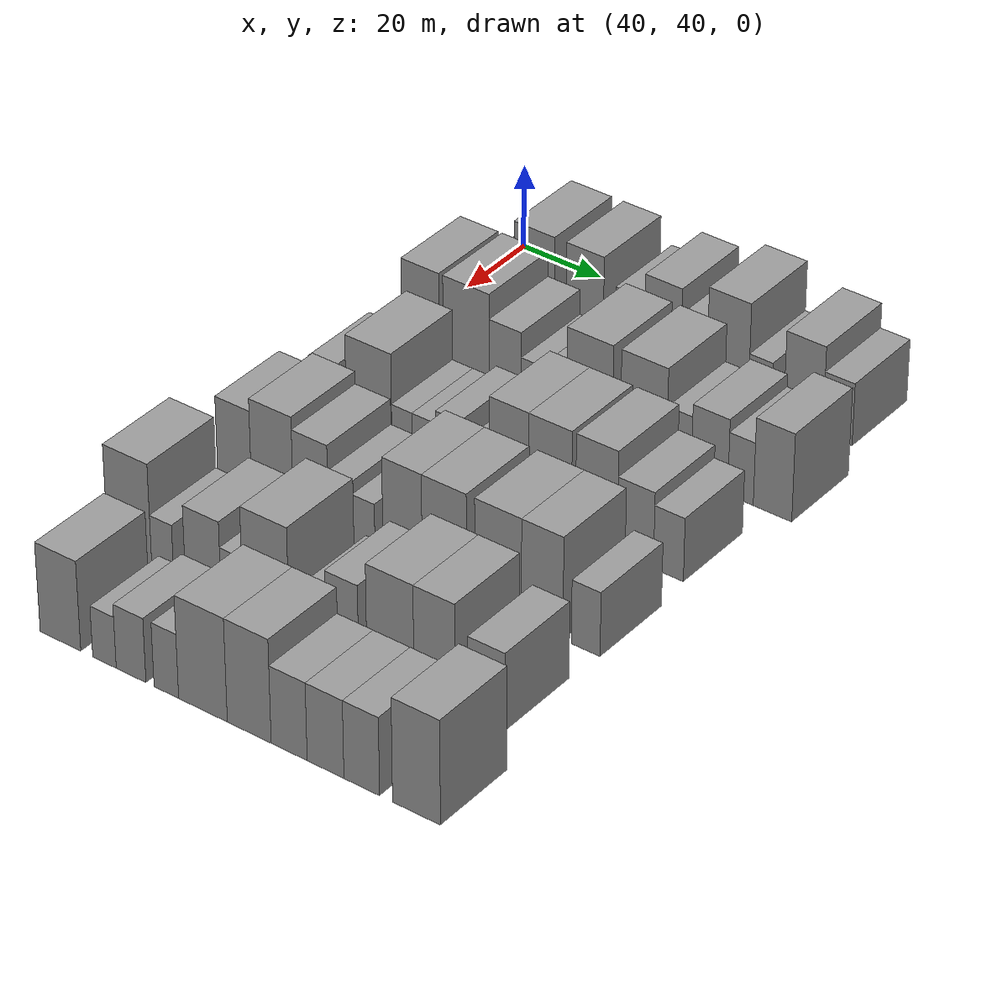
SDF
<sdf version="1.6">
 <world name="default">
  <model name="building_61">
   <static>1</static>
   <pose>50.0000 49.7104 0 0.000000 0.000000 0.000000</pose>
   <link name="link">
    <pose>0 0 6.00 0 0 0</pose>
    <collision name="collision"><geometry><box><size>20.0000 4.9431 12.0000</size></box></geometry></collision>
    <visual name="visual">
     <cast_shadows>0</cast_shadows>
     <geometry><box><size>20.0000 4.9431 12.0000</size></box></geometry>
     <material>
      <script>
       <uri>model://grey_wall/materials/scripts</uri>
       <uri>model://grey_wall/materials/textures</uri>
       <name>vrc/grey_wall</name>
      </script>
     </material>
    </visual>
   </link>
  </model>
  <model name="building_62">
   <static>1</static>
   <pose>50.0000 57.4288 0 0.000000 0.000000 0.000000</pose>
   <link name="link">
    <pose>0 0 10.50 0 0 0</pose>
    <collision name="collision"><geometry><box><size>20.0000 10.4938 21.0000</size></box></geometry></collision>
    <visual name="visual">
     <cast_shadows>0</cast_shadows>
     <geometry><box><size>20.0000 10.4938 21.0000</size></box></geometry>
     <material>
      <script>
       <uri>model://grey_wall/materials/scripts</uri>
       <uri>model://grey_wall/materials/textures</uri>
       <name>vrc/grey_wall</name>
      </script>
     </material>
    </visual>
   </link>
  </model>
  <model name="building_63">
   <static>1</static>
   <pose>50.0000 70.4778 0 0.000000 0.000000 0.000000</pose>
   <link name="link">
    <pose>0 0 10.50 0 0 0</pose>
    <collision name="collision"><geometry><box><size>20.0000 9.6041 21.0000</size></box></geometry></collision>
    <visual name="visual">
     <cast_shadows>0</cast_shadows>
     <geometry><box><size>20.0000 9.6041 21.0000</size></box></geometry>
     <material>
      <script>
       <uri>model://grey_wall/materials/scripts</uri>
       <uri>model://grey_wall/materials/textures</uri>
       <name>vrc/grey_wall</name>
      </script>
     </material>
    </visual>
   </link>
  </model>
  <model name="building_64">
   <static>1</static>
   <pose>50.0000 81.9742 0 0.000000 0.000000 0.000000</pose>
   <link name="link">
    <pose>0 0 7.50 0 0 0</pose>
    <collision name="collision"><geometry><box><size>20.0000 7.3887 15.0000</size></box></geometry></collision>
    <visual name="visual">
     <cast_shadows>0</cast_shadows>
     <geometry><box><size>20.0000 7.3887 15.0000</size></box></geometry>
     <material>
      <script>
       <uri>model://grey_wall/materials/scripts</uri>
       <uri>model://grey_wall/materials/textures</uri>
       <name>vrc/grey_wall</name>
      </script>
     </material>
    </visual>
   </link>
  </model>
  <model name="building_65">
   <static>1</static>
   <pose>50.0000 90.2944 0 0.000000 0.000000 0.000000</pose>
   <link name="link">
    <pose>0 0 10.50 0 0 0</pose>
    <collision name="collision"><geometry><box><size>20.0000 9.2517 21.0000</size></box></geometry></collision>
    <visual name="visual">
     <cast_shadows>0</cast_shadows>
     <geometry><box><size>20.0000 9.2517 21.0000</size></box></geometry>
     <material>
      <script>
       <uri>model://grey_wall/materials/scripts</uri>
       <uri>model://grey_wall/materials/textures</uri>
       <name>vrc/grey_wall</name>
      </script>
     </material>
    </visual>
   </link>
  </model>
  <model name="building_66">
   <static>1</static>
   <pose>50.0000 98.1744 0 0.000000 0.000000 0.000000</pose>
   <link name="link">
    <pose>0 0 7.50 0 0 0</pose>
    <collision name="collision"><geometry><box><size>20.0000 6.5083 15.0000</size></box></geometry></collision>
    <visual name="visual">
     <cast_shadows>0</cast_shadows>
     <geometry><box><size>20.0000 6.5083 15.0000</size></box></geometry>
     <material>
      <script>
       <uri>model://grey_wall/materials/scripts</uri>
       <uri>model://grey_wall/materials/textures</uri>
       <name>vrc/grey_wall</name>
      </script>
     </material>
    </visual>
   </link>
  </model>
  <model name="building_67">
   <static>1</static>
   <pose>50.0000 106.5988 0 0.000000 0.000000 0.000000</pose>
   <link name="link">
    <pose>0 0 12.00 0 0 0</pose>
    <collision name="collision"><geometry><box><size>20.0000 10.3404 24.0000</size></box></geometry></collision>
    <visual name="visual">
     <cast_shadows>0</cast_shadows>
     <geometry><box><size>20.0000 10.3404 24.0000</size></box></geometry>
     <material>
      <script>
       <uri>model://grey_wall/materials/scripts</uri>
       <uri>model://grey_wall/materials/textures</uri>
       <name>vrc/grey_wall</name>
      </script>
     </material>
    </visual>
   </link>
  </model>
  <model name="building_68">
   <static>1</static>
   <pose>50.0000 114.6178 0 0.000000 0.000000 0.000000</pose>
   <link name="link">
    <pose>0 0 6.00 0 0 0</pose>
    <collision name="collision"><geometry><box><size>20.0000 5.6977 12.0000</size></box></geometry></collision>
    <visual name="visual">
     <cast_shadows>0</cast_shadows>
     <geometry><box><size>20.0000 5.6977 12.0000</size></box></geometry>
     <material>
      <script>
       <uri>model://grey_wall/materials/scripts</uri>
       <uri>model://grey_wall/materials/textures</uri>
       <name>vrc/grey_wall</name>
      </script>
     </material>
    </visual>
   </link>
  </model>
  <model name="building_69">
   <static>1</static>
   <pose>50.0000 125.2408 0 0.000000 0.000000 0.000000</pose>
   <link name="link">
    <pose>0 0 10.50 0 0 0</pose>
    <collision name="collision"><geometry><box><size>20.0000 9.5483 21.0000</size></box></geometry></collision>
    <visual name="visual">
     <cast_shadows>0</cast_shadows>
     <geometry><box><size>20.0000 9.5483 21.0000</size></box></geometry>
     <material>
      <script>
       <uri>model://grey_wall/materials/scripts</uri>
       <uri>model://grey_wall/materials/textures</uri>
       <name>vrc/grey_wall</name>
      </script>
     </material>
    </visual>
   </link>
  </model>
  <model name="building_70">
   <static>1</static>
   <pose>50.0000 133.5757 0 0.000000 0.000000 0.000000</pose>
   <link name="link">
    <pose>0 0 7.50 0 0 0</pose>
    <collision name="collision"><geometry><box><size>20.0000 7.1214 15.0000</size></box></geometry></collision>
    <visual name="visual">
     <cast_shadows>0</cast_shadows>
     <geometry><box><size>20.0000 7.1214 15.0000</size></box></geometry>
     <material>
      <script>
       <uri>model://grey_wall/materials/scripts</uri>
       <uri>model://grey_wall/materials/textures</uri>
       <name>vrc/grey_wall</name>
      </script>
     </material>
    </visual>
   </link>
  </model>
  <model name="building_177">
   <static>1</static>
   <pose>79.0000 49.9518 0 0.000000 0.000000 0.000000</pose>
   <link name="link">
    <pose>0 0 12.00 0 0 0</pose>
    <collision name="collision"><geometry><box><size>20.0000 9.7436 24.0000</size></box></geometry></collision>
    <visual name="visual">
     <cast_shadows>0</cast_shadows>
     <geometry><box><size>20.0000 9.7436 24.0000</size></box></geometry>
     <material>
      <script>
       <uri>model://grey_wall/materials/scripts</uri>
       <uri>model://grey_wall/materials/textures</uri>
       <name>vrc/grey_wall</name>
      </script>
     </material>
    </visual>
   </link>
  </model>
  <model name="building_178">
   <static>1</static>
   <pose>79.0000 61.7249 0 0.000000 0.000000 0.000000</pose>
   <link name="link">
    <pose>0 0 12.00 0 0 0</pose>
    <collision name="collision"><geometry><box><size>20.0000 11.8027 24.0000</size></box></geometry></collision>
    <visual name="visual">
     <cast_shadows>0</cast_shadows>
     <geometry><box><size>20.0000 11.8027 24.0000</size></box></geometry>
     <material>
      <script>
       <uri>model://grey_wall/materials/scripts</uri>
       <uri>model://grey_wall/materials/textures</uri>
       <name>vrc/grey_wall</name>
      </script>
     </material>
    </visual>
   </link>
  </model>
  <model name="building_179">
   <static>1</static>
   <pose>79.0000 71.7182 0 0.000000 0.000000 0.000000</pose>
   <link name="link">
    <pose>0 0 9.00 0 0 0</pose>
    <collision name="collision"><geometry><box><size>20.0000 8.1837 18.0000</size></box></geometry></collision>
    <visual name="visual">
     <cast_shadows>0</cast_shadows>
     <geometry><box><size>20.0000 8.1837 18.0000</size></box></geometry>
     <material>
      <script>
       <uri>model://grey_wall/materials/scripts</uri>
       <uri>model://grey_wall/materials/textures</uri>
       <name>vrc/grey_wall</name>
      </script>
     </material>
    </visual>
   </link>
  </model>
  <model name="building_180">
   <static>1</static>
   <pose>79.0000 78.3040 0 0.000000 0.000000 0.000000</pose>
   <link name="link">
    <pose>0 0 6.00 0 0 0</pose>
    <collision name="collision"><geometry><box><size>20.0000 4.9880 12.0000</size></box></geometry></collision>
    <visual name="visual">
     <cast_shadows>0</cast_shadows>
     <geometry><box><size>20.0000 4.9880 12.0000</size></box></geometry>
     <material>
      <script>
       <uri>model://grey_wall/materials/scripts</uri>
       <uri>model://grey_wall/materials/textures</uri>
       <name>vrc/grey_wall</name>
      </script>
     </material>
    </visual>
   </link>
  </model>
  <model name="building_181">
   <static>1</static>
   <pose>79.0000 83.4930 0 0.000000 0.000000 0.000000</pose>
   <link name="link">
    <pose>0 0 6.00 0 0 0</pose>
    <collision name="collision"><geometry><box><size>20.0000 5.3899 12.0000</size></box></geometry></collision>
    <visual name="visual">
     <cast_shadows>0</cast_shadows>
     <geometry><box><size>20.0000 5.3899 12.0000</size></box></geometry>
     <material>
      <script>
       <uri>model://grey_wall/materials/scripts</uri>
       <uri>model://grey_wall/materials/textures</uri>
       <name>vrc/grey_wall</name>
      </script>
     </material>
    </visual>
   </link>
  </model>
  <model name="building_182">
   <static>1</static>
   <pose>79.0000 92.8943 0 0.000000 0.000000 0.000000</pose>
   <link name="link">
    <pose>0 0 12.00 0 0 0</pose>
    <collision name="collision"><geometry><box><size>20.0000 11.4127 24.0000</size></box></geometry></collision>
    <visual name="visual">
     <cast_shadows>0</cast_shadows>
     <geometry><box><size>20.0000 11.4127 24.0000</size></box></geometry>
     <material>
      <script>
       <uri>model://grey_wall/materials/scripts</uri>
       <uri>model://grey_wall/materials/textures</uri>
       <name>vrc/grey_wall</name>
      </script>
     </material>
    </visual>
   </link>
  </model>
  <model name="building_183">
   <static>1</static>
   <pose>79.0000 106.2939 0 0.000000 0.000000 0.000000</pose>
   <link name="link">
    <pose>0 0 12.00 0 0 0</pose>
    <collision name="collision"><geometry><box><size>20.0000 11.3866 24.0000</size></box></geometry></collision>
    <visual name="visual">
     <cast_shadows>0</cast_shadows>
     <geometry><box><size>20.0000 11.3866 24.0000</size></box></geometry>
     <material>
      <script>
       <uri>model://grey_wall/materials/scripts</uri>
       <uri>model://grey_wall/materials/textures</uri>
       <name>vrc/grey_wall</name>
      </script>
     </material>
    </visual>
   </link>
  </model>
  <model name="building_184">
   <static>1</static>
   <pose>79.0000 115.0120 0 0.000000 0.000000 0.000000</pose>
   <link name="link">
    <pose>0 0 7.50 0 0 0</pose>
    <collision name="collision"><geometry><box><size>20.0000 6.0496 15.0000</size></box></geometry></collision>
    <visual name="visual">
     <cast_shadows>0</cast_shadows>
     <geometry><box><size>20.0000 6.0496 15.0000</size></box></geometry>
     <material>
      <script>
       <uri>model://grey_wall/materials/scripts</uri>
       <uri>model://grey_wall/materials/textures</uri>
       <name>vrc/grey_wall</name>
      </script>
     </material>
    </visual>
   </link>
  </model>
  <model name="building_185">
   <static>1</static>
   <pose>79.0000 122.4650 0 0.000000 0.000000 0.000000</pose>
   <link name="link">
    <pose>0 0 9.00 0 0 0</pose>
    <collision name="collision"><geometry><box><size>20.0000 8.8563 18.0000</size></box></geometry></collision>
    <visual name="visual">
     <cast_shadows>0</cast_shadows>
     <geometry><box><size>20.0000 8.8563 18.0000</size></box></geometry>
     <material>
      <script>
       <uri>model://grey_wall/materials/scripts</uri>
       <uri>model://grey_wall/materials/textures</uri>
       <name>vrc/grey_wall</name>
      </script>
     </material>
    </visual>
   </link>
  </model>
  <model name="building_186">
   <static>1</static>
   <pose>79.0000 129.9627 0 0.000000 0.000000 0.000000</pose>
   <link name="link">
    <pose>0 0 7.50 0 0 0</pose>
    <collision name="collision"><geometry><box><size>20.0000 6.1390 15.0000</size></box></geometry></collision>
    <visual name="visual">
     <cast_shadows>0</cast_shadows>
     <geometry><box><size>20.0000 6.1390 15.0000</size></box></geometry>
     <material>
      <script>
       <uri>model://grey_wall/materials/scripts</uri>
       <uri>model://grey_wall/materials/textures</uri>
       <name>vrc/grey_wall</name>
      </script>
     </material>
    </visual>
   </link>
  </model>
  <model name="building_187">
   <static>1</static>
   <pose>79.0000 137.6191 0 0.000000 0.000000 0.000000</pose>
   <link name="link">
    <pose>0 0 10.50 0 0 0</pose>
    <collision name="collision"><geometry><box><size>20.0000 9.1738 21.0000</size></box></geometry></collision>
    <visual name="visual">
     <cast_shadows>0</cast_shadows>
     <geometry><box><size>20.0000 9.1738 21.0000</size></box></geometry>
     <material>
      <script>
       <uri>model://grey_wall/materials/scripts</uri>
       <uri>model://grey_wall/materials/textures</uri>
       <name>vrc/grey_wall</name>
      </script>
     </material>
    </visual>
   </link>
  </model>
  <model name="building_289">
   <static>1</static>
   <pose>108.0000 47.2314 0 0.000000 0.000000 0.000000</pose>
   <link name="link">
    <pose>0 0 7.50 0 0 0</pose>
    <collision name="collision"><geometry><box><size>20.0000 6.7043 15.0000</size></box></geometry></collision>
    <visual name="visual">
     <cast_shadows>0</cast_shadows>
     <geometry><box><size>20.0000 6.7043 15.0000</size></box></geometry>
     <material>
      <script>
       <uri>model://grey_wall/materials/scripts</uri>
       <uri>model://grey_wall/materials/textures</uri>
       <name>vrc/grey_wall</name>
      </script>
     </material>
    </visual>
   </link>
  </model>
  <model name="building_290">
   <static>1</static>
   <pose>108.0000 59.3841 0 0.000000 0.000000 0.000000</pose>
   <link name="link">
    <pose>0 0 12.00 0 0 0</pose>
    <collision name="collision"><geometry><box><size>20.0000 11.6011 24.0000</size></box></geometry></collision>
    <visual name="visual">
     <cast_shadows>0</cast_shadows>
     <geometry><box><size>20.0000 11.6011 24.0000</size></box></geometry>
     <material>
      <script>
       <uri>model://grey_wall/materials/scripts</uri>
       <uri>model://grey_wall/materials/textures</uri>
       <name>vrc/grey_wall</name>
      </script>
     </material>
    </visual>
   </link>
  </model>
  <model name="building_291">
   <static>1</static>
   <pose>108.0000 67.7807 0 0.000000 0.000000 0.000000</pose>
   <link name="link">
    <pose>0 0 6.00 0 0 0</pose>
    <collision name="collision"><geometry><box><size>20.0000 5.1921 12.0000</size></box></geometry></collision>
    <visual name="visual">
     <cast_shadows>0</cast_shadows>
     <geometry><box><size>20.0000 5.1921 12.0000</size></box></geometry>
     <material>
      <script>
       <uri>model://grey_wall/materials/scripts</uri>
       <uri>model://grey_wall/materials/textures</uri>
       <name>vrc/grey_wall</name>
      </script>
     </material>
    </visual>
   </link>
  </model>
  <model name="building_292">
   <static>1</static>
   <pose>108.0000 73.3391 0 0.000000 0.000000 0.000000</pose>
   <link name="link">
    <pose>0 0 6.00 0 0 0</pose>
    <collision name="collision"><geometry><box><size>20.0000 5.9247 12.0000</size></box></geometry></collision>
    <visual name="visual">
     <cast_shadows>0</cast_shadows>
     <geometry><box><size>20.0000 5.9247 12.0000</size></box></geometry>
     <material>
      <script>
       <uri>model://grey_wall/materials/scripts</uri>
       <uri>model://grey_wall/materials/textures</uri>
       <name>vrc/grey_wall</name>
      </script>
     </material>
    </visual>
   </link>
  </model>
  <model name="building_293">
   <static>1</static>
   <pose>108.0000 79.3528 0 0.000000 0.000000 0.000000</pose>
   <link name="link">
    <pose>0 0 7.50 0 0 0</pose>
    <collision name="collision"><geometry><box><size>20.0000 6.1026 15.0000</size></box></geometry></collision>
    <visual name="visual">
     <cast_shadows>0</cast_shadows>
     <geometry><box><size>20.0000 6.1026 15.0000</size></box></geometry>
     <material>
      <script>
       <uri>model://grey_wall/materials/scripts</uri>
       <uri>model://grey_wall/materials/textures</uri>
       <name>vrc/grey_wall</name>
      </script>
     </material>
    </visual>
   </link>
  </model>
  <model name="building_294">
   <static>1</static>
   <pose>108.0000 87.0070 0 0.000000 0.000000 0.000000</pose>
   <link name="link">
    <pose>0 0 6.00 0 0 0</pose>
    <collision name="collision"><geometry><box><size>20.0000 5.2059 12.0000</size></box></geometry></collision>
    <visual name="visual">
     <cast_shadows>0</cast_shadows>
     <geometry><box><size>20.0000 5.2059 12.0000</size></box></geometry>
     <material>
      <script>
       <uri>model://grey_wall/materials/scripts</uri>
       <uri>model://grey_wall/materials/textures</uri>
       <name>vrc/grey_wall</name>
      </script>
     </material>
    </visual>
   </link>
  </model>
  <model name="building_295">
   <static>1</static>
   <pose>108.0000 94.4522 0 0.000000 0.000000 0.000000</pose>
   <link name="link">
    <pose>0 0 12.00 0 0 0</pose>
    <collision name="collision"><geometry><box><size>20.0000 9.6846 24.0000</size></box></geometry></collision>
    <visual name="visual">
     <cast_shadows>0</cast_shadows>
     <geometry><box><size>20.0000 9.6846 24.0000</size></box></geometry>
     <material>
      <script>
       <uri>model://grey_wall/materials/scripts</uri>
       <uri>model://grey_wall/materials/textures</uri>
       <name>vrc/grey_wall</name>
      </script>
     </material>
    </visual>
   </link>
  </model>
  <model name="building_296">
   <static>1</static>
   <pose>108.0000 104.5283 0 0.000000 0.000000 0.000000</pose>
   <link name="link">
    <pose>0 0 12.00 0 0 0</pose>
    <collision name="collision"><geometry><box><size>20.0000 10.4678 24.0000</size></box></geometry></collision>
    <visual name="visual">
     <cast_shadows>0</cast_shadows>
     <geometry><box><size>20.0000 10.4678 24.0000</size></box></geometry>
     <material>
      <script>
       <uri>model://grey_wall/materials/scripts</uri>
       <uri>model://grey_wall/materials/textures</uri>
       <name>vrc/grey_wall</name>
      </script>
     </material>
    </visual>
   </link>
  </model>
  <model name="building_297">
   <static>1</static>
   <pose>108.0000 115.8125 0 0.000000 0.000000 0.000000</pose>
   <link name="link">
    <pose>0 0 12.00 0 0 0</pose>
    <collision name="collision"><geometry><box><size>20.0000 10.1006 24.0000</size></box></geometry></collision>
    <visual name="visual">
     <cast_shadows>0</cast_shadows>
     <geometry><box><size>20.0000 10.1006 24.0000</size></box></geometry>
     <material>
      <script>
       <uri>model://grey_wall/materials/scripts</uri>
       <uri>model://grey_wall/materials/textures</uri>
       <name>vrc/grey_wall</name>
      </script>
     </material>
    </visual>
   </link>
  </model>
  <model name="building_298">
   <static>1</static>
   <pose>108.0000 125.2075 0 0.000000 0.000000 0.000000</pose>
   <link name="link">
    <pose>0 0 9.00 0 0 0</pose>
    <collision name="collision"><geometry><box><size>20.0000 8.6893 18.0000</size></box></geometry></collision>
    <visual name="visual">
     <cast_shadows>0</cast_shadows>
     <geometry><box><size>20.0000 8.6893 18.0000</size></box></geometry>
     <material>
      <script>
       <uri>model://grey_wall/materials/scripts</uri>
       <uri>model://grey_wall/materials/textures</uri>
       <name>vrc/grey_wall</name>
      </script>
     </material>
    </visual>
   </link>
  </model>
  <model name="building_299">
   <static>1</static>
   <pose>108.0000 133.1054 0 0.000000 0.000000 0.000000</pose>
   <link name="link">
    <pose>0 0 7.50 0 0 0</pose>
    <collision name="collision"><geometry><box><size>20.0000 7.1064 15.0000</size></box></geometry></collision>
    <visual name="visual">
     <cast_shadows>0</cast_shadows>
     <geometry><box><size>20.0000 7.1064 15.0000</size></box></geometry>
     <material>
      <script>
       <uri>model://grey_wall/materials/scripts</uri>
       <uri>model://grey_wall/materials/textures</uri>
       <name>vrc/grey_wall</name>
      </script>
     </material>
    </visual>
   </link>
  </model>
  <model name="building_398">
   <static>1</static>
   <pose>137.0000 48.3665 0 0.000000 0.000000 0.000000</pose>
   <link name="link">
    <pose>0 0 10.50 0 0 0</pose>
    <collision name="collision"><geometry><box><size>20.0000 8.6712 21.0000</size></box></geometry></collision>
    <visual name="visual">
     <cast_shadows>0</cast_shadows>
     <geometry><box><size>20.0000 8.6712 21.0000</size></box></geometry>
     <material>
      <script>
       <uri>model://grey_wall/materials/scripts</uri>
       <uri>model://grey_wall/materials/textures</uri>
       <name>vrc/grey_wall</name>
      </script>
     </material>
    </visual>
   </link>
  </model>
  <model name="building_399">
   <static>1</static>
   <pose>137.0000 58.0182 0 0.000000 0.000000 0.000000</pose>
   <link name="link">
    <pose>0 0 12.00 0 0 0</pose>
    <collision name="collision"><geometry><box><size>20.0000 10.6322 24.0000</size></box></geometry></collision>
    <visual name="visual">
     <cast_shadows>0</cast_shadows>
     <geometry><box><size>20.0000 10.6322 24.0000</size></box></geometry>
     <material>
      <script>
       <uri>model://grey_wall/materials/scripts</uri>
       <uri>model://grey_wall/materials/textures</uri>
       <name>vrc/grey_wall</name>
      </script>
     </material>
    </visual>
   </link>
  </model>
  <model name="building_400">
   <static>1</static>
   <pose>137.0000 67.7487 0 0.000000 0.000000 0.000000</pose>
   <link name="link">
    <pose>0 0 10.50 0 0 0</pose>
    <collision name="collision"><geometry><box><size>20.0000 8.8288 21.0000</size></box></geometry></collision>
    <visual name="visual">
     <cast_shadows>0</cast_shadows>
     <geometry><box><size>20.0000 8.8288 21.0000</size></box></geometry>
     <material>
      <script>
       <uri>model://grey_wall/materials/scripts</uri>
       <uri>model://grey_wall/materials/textures</uri>
       <name>vrc/grey_wall</name>
      </script>
     </material>
    </visual>
   </link>
  </model>
  <model name="building_401">
   <static>1</static>
   <pose>137.0000 75.1889 0 0.000000 0.000000 0.000000</pose>
   <link name="link">
    <pose>0 0 7.50 0 0 0</pose>
    <collision name="collision"><geometry><box><size>20.0000 6.0516 15.0000</size></box></geometry></collision>
    <visual name="visual">
     <cast_shadows>0</cast_shadows>
     <geometry><box><size>20.0000 6.0516 15.0000</size></box></geometry>
     <material>
      <script>
       <uri>model://grey_wall/materials/scripts</uri>
       <uri>model://grey_wall/materials/textures</uri>
       <name>vrc/grey_wall</name>
      </script>
     </material>
    </visual>
   </link>
  </model>
  <model name="building_402">
   <static>1</static>
   <pose>137.0000 80.9680 0 0.000000 0.000000 0.000000</pose>
   <link name="link">
    <pose>0 0 6.00 0 0 0</pose>
    <collision name="collision"><geometry><box><size>20.0000 5.5065 12.0000</size></box></geometry></collision>
    <visual name="visual">
     <cast_shadows>0</cast_shadows>
     <geometry><box><size>20.0000 5.5065 12.0000</size></box></geometry>
     <material>
      <script>
       <uri>model://grey_wall/materials/scripts</uri>
       <uri>model://grey_wall/materials/textures</uri>
       <name>vrc/grey_wall</name>
      </script>
     </material>
    </visual>
   </link>
  </model>
  <model name="building_403">
   <static>1</static>
   <pose>137.0000 90.5280 0 0.000000 0.000000 0.000000</pose>
   <link name="link">
    <pose>0 0 12.00 0 0 0</pose>
    <collision name="collision"><geometry><box><size>20.0000 9.6136 24.0000</size></box></geometry></collision>
    <visual name="visual">
     <cast_shadows>0</cast_shadows>
     <geometry><box><size>20.0000 9.6136 24.0000</size></box></geometry>
     <material>
      <script>
       <uri>model://grey_wall/materials/scripts</uri>
       <uri>model://grey_wall/materials/textures</uri>
       <name>vrc/grey_wall</name>
      </script>
     </material>
    </visual>
   </link>
  </model>
  <model name="building_404">
   <static>1</static>
   <pose>137.0000 100.7193 0 0.000000 0.000000 0.000000</pose>
   <link name="link">
    <pose>0 0 12.00 0 0 0</pose>
    <collision name="collision"><geometry><box><size>20.0000 10.7689 24.0000</size></box></geometry></collision>
    <visual name="visual">
     <cast_shadows>0</cast_shadows>
     <geometry><box><size>20.0000 10.7689 24.0000</size></box></geometry>
     <material>
      <script>
       <uri>model://grey_wall/materials/scripts</uri>
       <uri>model://grey_wall/materials/textures</uri>
       <name>vrc/grey_wall</name>
      </script>
     </material>
    </visual>
   </link>
  </model>
  <model name="building_405">
   <static>1</static>
   <pose>137.0000 113.6808 0 0.000000 0.000000 0.000000</pose>
   <link name="link">
    <pose>0 0 12.00 0 0 0</pose>
    <collision name="collision"><geometry><box><size>20.0000 11.1541 24.0000</size></box></geometry></collision>
    <visual name="visual">
     <cast_shadows>0</cast_shadows>
     <geometry><box><size>20.0000 11.1541 24.0000</size></box></geometry>
     <material>
      <script>
       <uri>model://grey_wall/materials/scripts</uri>
       <uri>model://grey_wall/materials/textures</uri>
       <name>vrc/grey_wall</name>
      </script>
     </material>
    </visual>
   </link>
  </model>
  <model name="building_406">
   <static>1</static>
   <pose>137.0000 124.1979 0 0.000000 0.000000 0.000000</pose>
   <link name="link">
    <pose>0 0 12.00 0 0 0</pose>
    <collision name="collision"><geometry><box><size>20.0000 9.8800 24.0000</size></box></geometry></collision>
    <visual name="visual">
     <cast_shadows>0</cast_shadows>
     <geometry><box><size>20.0000 9.8800 24.0000</size></box></geometry>
     <material>
      <script>
       <uri>model://grey_wall/materials/scripts</uri>
       <uri>model://grey_wall/materials/textures</uri>
       <name>vrc/grey_wall</name>
      </script>
     </material>
    </visual>
   </link>
  </model>
  <model name="building_407">
   <static>1</static>
   <pose>137.0000 134.5091 0 0.000000 0.000000 0.000000</pose>
   <link name="link">
    <pose>0 0 7.50 0 0 0</pose>
    <collision name="collision"><geometry><box><size>20.0000 6.7424 15.0000</size></box></geometry></collision>
    <visual name="visual">
     <cast_shadows>0</cast_shadows>
     <geometry><box><size>20.0000 6.7424 15.0000</size></box></geometry>
     <material>
      <script>
       <uri>model://grey_wall/materials/scripts</uri>
       <uri>model://grey_wall/materials/textures</uri>
       <name>vrc/grey_wall</name>
      </script>
     </material>
    </visual>
   </link>
  </model>
  <model name="building_517">
   <static>1</static>
   <pose>166.0000 45.8136 0 0.000000 0.000000 0.000000</pose>
   <link name="link">
    <pose>0 0 12.00 0 0 0</pose>
    <collision name="collision"><geometry><box><size>20.0000 11.2271 24.0000</size></box></geometry></collision>
    <visual name="visual">
     <cast_shadows>0</cast_shadows>
     <geometry><box><size>20.0000 11.2271 24.0000</size></box></geometry>
     <material>
      <script>
       <uri>model://grey_wall/materials/scripts</uri>
       <uri>model://grey_wall/materials/textures</uri>
       <name>vrc/grey_wall</name>
      </script>
     </material>
    </visual>
   </link>
  </model>
  <model name="building_518">
   <static>1</static>
   <pose>166.0000 54.2006 0 0.000000 0.000000 0.000000</pose>
   <link name="link">
    <pose>0 0 6.00 0 0 0</pose>
    <collision name="collision"><geometry><box><size>20.0000 5.5469 12.0000</size></box></geometry></collision>
    <visual name="visual">
     <cast_shadows>0</cast_shadows>
     <geometry><box><size>20.0000 5.5469 12.0000</size></box></geometry>
     <material>
      <script>
       <uri>model://grey_wall/materials/scripts</uri>
       <uri>model://grey_wall/materials/textures</uri>
       <name>vrc/grey_wall</name>
      </script>
     </material>
    </visual>
   </link>
  </model>
  <model name="building_519">
   <static>1</static>
   <pose>166.0000 64.4523 0 0.000000 0.000000 0.000000</pose>
   <link name="link">
    <pose>0 0 9.00 0 0 0</pose>
    <collision name="collision"><geometry><box><size>20.0000 8.9566 18.0000</size></box></geometry></collision>
    <visual name="visual">
     <cast_shadows>0</cast_shadows>
     <geometry><box><size>20.0000 8.9566 18.0000</size></box></geometry>
     <material>
      <script>
       <uri>model://grey_wall/materials/scripts</uri>
       <uri>model://grey_wall/materials/textures</uri>
       <name>vrc/grey_wall</name>
      </script>
     </material>
    </visual>
   </link>
  </model>
  <model name="building_520">
   <static>1</static>
   <pose>166.0000 71.6624 0 0.000000 0.000000 0.000000</pose>
   <link name="link">
    <pose>0 0 6.00 0 0 0</pose>
    <collision name="collision"><geometry><box><size>20.0000 5.4635 12.0000</size></box></geometry></collision>
    <visual name="visual">
     <cast_shadows>0</cast_shadows>
     <geometry><box><size>20.0000 5.4635 12.0000</size></box></geometry>
     <material>
      <script>
       <uri>model://grey_wall/materials/scripts</uri>
       <uri>model://grey_wall/materials/textures</uri>
       <name>vrc/grey_wall</name>
      </script>
     </material>
    </visual>
   </link>
  </model>
  <model name="building_521">
   <static>1</static>
   <pose>166.0000 80.0950 0 0.000000 0.000000 0.000000</pose>
   <link name="link">
    <pose>0 0 12.00 0 0 0</pose>
    <collision name="collision"><geometry><box><size>20.0000 11.4017 24.0000</size></box></geometry></collision>
    <visual name="visual">
     <cast_shadows>0</cast_shadows>
     <geometry><box><size>20.0000 11.4017 24.0000</size></box></geometry>
     <material>
      <script>
       <uri>model://grey_wall/materials/scripts</uri>
       <uri>model://grey_wall/materials/textures</uri>
       <name>vrc/grey_wall</name>
      </script>
     </material>
    </visual>
   </link>
  </model>
  <model name="building_522">
   <static>1</static>
   <pose>166.0000 91.7684 0 0.000000 0.000000 0.000000</pose>
   <link name="link">
    <pose>0 0 6.00 0 0 0</pose>
    <collision name="collision"><geometry><box><size>20.0000 5.9450 12.0000</size></box></geometry></collision>
    <visual name="visual">
     <cast_shadows>0</cast_shadows>
     <geometry><box><size>20.0000 5.9450 12.0000</size></box></geometry>
     <material>
      <script>
       <uri>model://grey_wall/materials/scripts</uri>
       <uri>model://grey_wall/materials/textures</uri>
       <name>vrc/grey_wall</name>
      </script>
     </material>
    </visual>
   </link>
  </model>
  <model name="building_523">
   <static>1</static>
   <pose>166.0000 98.6915 0 0.000000 0.000000 0.000000</pose>
   <link name="link">
    <pose>0 0 9.00 0 0 0</pose>
    <collision name="collision"><geometry><box><size>20.0000 7.9012 18.0000</size></box></geometry></collision>
    <visual name="visual">
     <cast_shadows>0</cast_shadows>
     <geometry><box><size>20.0000 7.9012 18.0000</size></box></geometry>
     <material>
      <script>
       <uri>model://grey_wall/materials/scripts</uri>
       <uri>model://grey_wall/materials/textures</uri>
       <name>vrc/grey_wall</name>
      </script>
     </material>
    </visual>
   </link>
  </model>
  <model name="building_524">
   <static>1</static>
   <pose>166.0000 110.2535 0 0.000000 0.000000 0.000000</pose>
   <link name="link">
    <pose>0 0 12.00 0 0 0</pose>
    <collision name="collision"><geometry><box><size>20.0000 11.2229 24.0000</size></box></geometry></collision>
    <visual name="visual">
     <cast_shadows>0</cast_shadows>
     <geometry><box><size>20.0000 11.2229 24.0000</size></box></geometry>
     <material>
      <script>
       <uri>model://grey_wall/materials/scripts</uri>
       <uri>model://grey_wall/materials/textures</uri>
       <name>vrc/grey_wall</name>
      </script>
     </material>
    </visual>
   </link>
  </model>
  <model name="building_525">
   <static>1</static>
   <pose>166.0000 120.7102 0 0.000000 0.000000 0.000000</pose>
   <link name="link">
    <pose>0 0 12.00 0 0 0</pose>
    <collision name="collision"><geometry><box><size>20.0000 9.6904 24.0000</size></box></geometry></collision>
    <visual name="visual">
     <cast_shadows>0</cast_shadows>
     <geometry><box><size>20.0000 9.6904 24.0000</size></box></geometry>
     <material>
      <script>
       <uri>model://grey_wall/materials/scripts</uri>
       <uri>model://grey_wall/materials/textures</uri>
       <name>vrc/grey_wall</name>
      </script>
     </material>
    </visual>
   </link>
  </model>
  <model name="building_526">
   <static>1</static>
   <pose>166.0000 132.8876 0 0.000000 0.000000 0.000000</pose>
   <link name="link">
    <pose>0 0 9.00 0 0 0</pose>
    <collision name="collision"><geometry><box><size>20.0000 8.6643 18.0000</size></box></geometry></collision>
    <visual name="visual">
     <cast_shadows>0</cast_shadows>
     <geometry><box><size>20.0000 8.6643 18.0000</size></box></geometry>
     <material>
      <script>
       <uri>model://grey_wall/materials/scripts</uri>
       <uri>model://grey_wall/materials/textures</uri>
       <name>vrc/grey_wall</name>
      </script>
     </material>
    </visual>
   </link>
  </model>
  <model name="building_623">
   <static>1</static>
   <pose>195.0000 53.3774 0 0.000000 0.000000 0.000000</pose>
   <link name="link">
    <pose>0 0 10.50 0 0 0</pose>
    <collision name="collision"><geometry><box><size>20.0000 10.2073 21.0000</size></box></geometry></collision>
    <visual name="visual">
     <cast_shadows>0</cast_shadows>
     <geometry><box><size>20.0000 10.2073 21.0000</size></box></geometry>
     <material>
      <script>
       <uri>model://grey_wall/materials/scripts</uri>
       <uri>model://grey_wall/materials/textures</uri>
       <name>vrc/grey_wall</name>
      </script>
     </material>
    </visual>
   </link>
  </model>
  <model name="building_624">
   <static>1</static>
   <pose>195.0000 64.3993 0 0.000000 0.000000 0.000000</pose>
   <link name="link">
    <pose>0 0 6.00 0 0 0</pose>
    <collision name="collision"><geometry><box><size>20.0000 5.8364 12.0000</size></box></geometry></collision>
    <visual name="visual">
     <cast_shadows>0</cast_shadows>
     <geometry><box><size>20.0000 5.8364 12.0000</size></box></geometry>
     <material>
      <script>
       <uri>model://grey_wall/materials/scripts</uri>
       <uri>model://grey_wall/materials/textures</uri>
       <name>vrc/grey_wall</name>
      </script>
     </material>
    </visual>
   </link>
  </model>
  <model name="building_625">
   <static>1</static>
   <pose>195.0000 70.9946 0 0.000000 0.000000 0.000000</pose>
   <link name="link">
    <pose>0 0 7.50 0 0 0</pose>
    <collision name="collision"><geometry><box><size>20.0000 7.3543 15.0000</size></box></geometry></collision>
    <visual name="visual">
     <cast_shadows>0</cast_shadows>
     <geometry><box><size>20.0000 7.3543 15.0000</size></box></geometry>
     <material>
      <script>
       <uri>model://grey_wall/materials/scripts</uri>
       <uri>model://grey_wall/materials/textures</uri>
       <name>vrc/grey_wall</name>
      </script>
     </material>
    </visual>
   </link>
  </model>
  <model name="building_626">
   <static>1</static>
   <pose>195.0000 79.6816 0 0.000000 0.000000 0.000000</pose>
   <link name="link">
    <pose>0 0 7.50 0 0 0</pose>
    <collision name="collision"><geometry><box><size>20.0000 6.0197 15.0000</size></box></geometry></collision>
    <visual name="visual">
     <cast_shadows>0</cast_shadows>
     <geometry><box><size>20.0000 6.0197 15.0000</size></box></geometry>
     <material>
      <script>
       <uri>model://grey_wall/materials/scripts</uri>
       <uri>model://grey_wall/materials/textures</uri>
       <name>vrc/grey_wall</name>
      </script>
     </material>
    </visual>
   </link>
  </model>
  <model name="building_627">
   <static>1</static>
   <pose>195.0000 88.5961 0 0.000000 0.000000 0.000000</pose>
   <link name="link">
    <pose>0 0 12.00 0 0 0</pose>
    <collision name="collision"><geometry><box><size>20.0000 11.8092 24.0000</size></box></geometry></collision>
    <visual name="visual">
     <cast_shadows>0</cast_shadows>
     <geometry><box><size>20.0000 11.8092 24.0000</size></box></geometry>
     <material>
      <script>
       <uri>model://grey_wall/materials/scripts</uri>
       <uri>model://grey_wall/materials/textures</uri>
       <name>vrc/grey_wall</name>
      </script>
     </material>
    </visual>
   </link>
  </model>
  <model name="building_628">
   <static>1</static>
   <pose>195.0000 99.7549 0 0.000000 0.000000 0.000000</pose>
   <link name="link">
    <pose>0 0 12.00 0 0 0</pose>
    <collision name="collision"><geometry><box><size>20.0000 10.5085 24.0000</size></box></geometry></collision>
    <visual name="visual">
     <cast_shadows>0</cast_shadows>
     <geometry><box><size>20.0000 10.5085 24.0000</size></box></geometry>
     <material>
      <script>
       <uri>model://grey_wall/materials/scripts</uri>
       <uri>model://grey_wall/materials/textures</uri>
       <name>vrc/grey_wall</name>
      </script>
     </material>
    </visual>
   </link>
  </model>
  <model name="building_629">
   <static>1</static>
   <pose>195.0000 109.2760 0 0.000000 0.000000 0.000000</pose>
   <link name="link">
    <pose>0 0 9.00 0 0 0</pose>
    <collision name="collision"><geometry><box><size>20.0000 8.5335 18.0000</size></box></geometry></collision>
    <visual name="visual">
     <cast_shadows>0</cast_shadows>
     <geometry><box><size>20.0000 8.5335 18.0000</size></box></geometry>
     <material>
      <script>
       <uri>model://grey_wall/materials/scripts</uri>
       <uri>model://grey_wall/materials/textures</uri>
       <name>vrc/grey_wall</name>
      </script>
     </material>
    </visual>
   </link>
  </model>
  <model name="building_630">
   <static>1</static>
   <pose>195.0000 117.8627 0 0.000000 0.000000 0.000000</pose>
   <link name="link">
    <pose>0 0 9.00 0 0 0</pose>
    <collision name="collision"><geometry><box><size>20.0000 8.6399 18.0000</size></box></geometry></collision>
    <visual name="visual">
     <cast_shadows>0</cast_shadows>
     <geometry><box><size>20.0000 8.6399 18.0000</size></box></geometry>
     <material>
      <script>
       <uri>model://grey_wall/materials/scripts</uri>
       <uri>model://grey_wall/materials/textures</uri>
       <name>vrc/grey_wall</name>
      </script>
     </material>
    </visual>
   </link>
  </model>
  <model name="building_631">
   <static>1</static>
   <pose>195.0000 126.3236 0 0.000000 0.000000 0.000000</pose>
   <link name="link">
    <pose>0 0 9.00 0 0 0</pose>
    <collision name="collision"><geometry><box><size>20.0000 8.2820 18.0000</size></box></geometry></collision>
    <visual name="visual">
     <cast_shadows>0</cast_shadows>
     <geometry><box><size>20.0000 8.2820 18.0000</size></box></geometry>
     <material>
      <script>
       <uri>model://grey_wall/materials/scripts</uri>
       <uri>model://grey_wall/materials/textures</uri>
       <name>vrc/grey_wall</name>
      </script>
     </material>
    </visual>
   </link>
  </model>
  <model name="building_632">
   <static>1</static>
   <pose>195.0000 138.9587 0 0.000000 0.000000 0.000000</pose>
   <link name="link">
    <pose>0 0 12.00 0 0 0</pose>
    <collision name="collision"><geometry><box><size>20.0000 10.9880 24.0000</size></box></geometry></collision>
    <visual name="visual">
     <cast_shadows>0</cast_shadows>
     <geometry><box><size>20.0000 10.9880 24.0000</size></box></geometry>
     <material>
      <script>
       <uri>model://grey_wall/materials/scripts</uri>
       <uri>model://grey_wall/materials/textures</uri>
       <name>vrc/grey_wall</name>
      </script>
     </material>
    </visual>
   </link>
  </model>
 </world>
</sdf>
